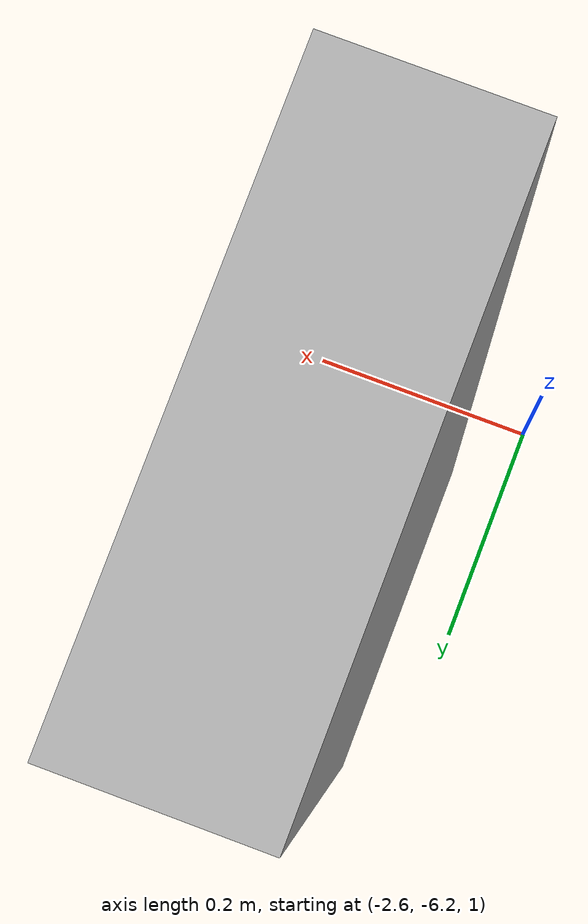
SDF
<?xml version="1.0"?>
<sdf version="1.4">
    <model name="box_wall">

      <pose>-2.5 -6 1.45 0 0 0</pose>
      <static>1</static>

      <link name="link">
        <collision name="collision">
          <geometry>
            <box>
              <size>0.1 0.3 1</size>
            </box>
          </geometry>
        </collision>

        <visual name="boxVisual">
          <geometry>
            <box>
              <size>0.1 0.3 1</size>
            </box>
          </geometry>
        </visual>
      </link>

    </model>
</sdf>
